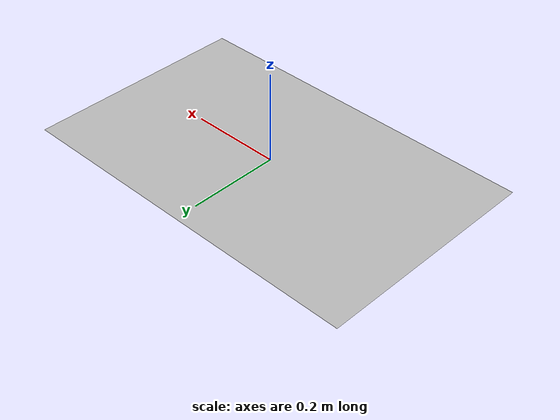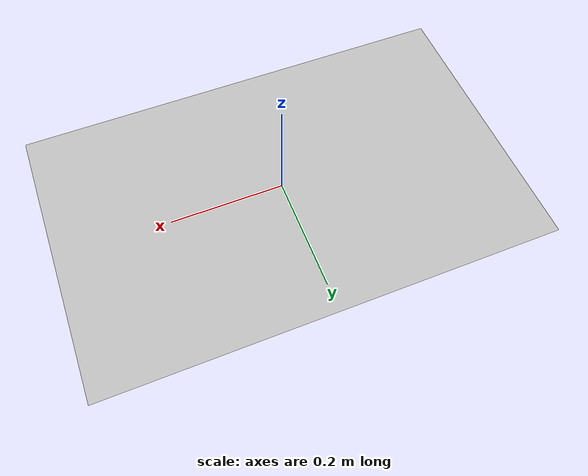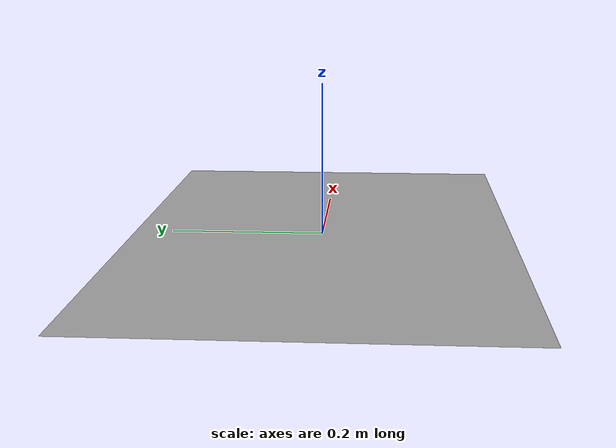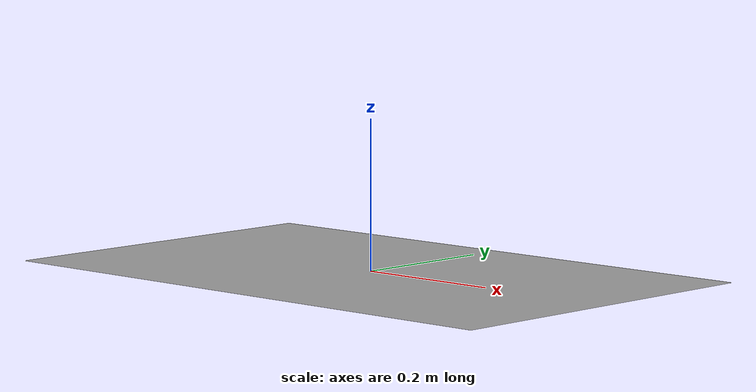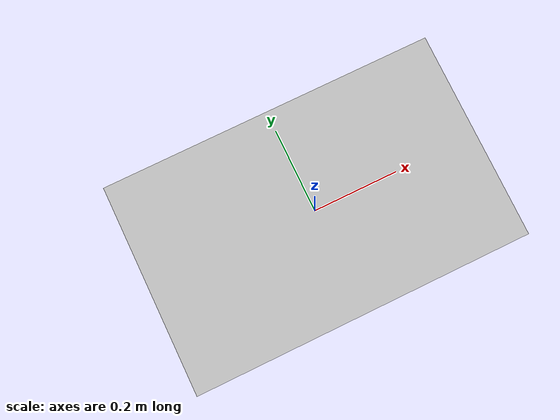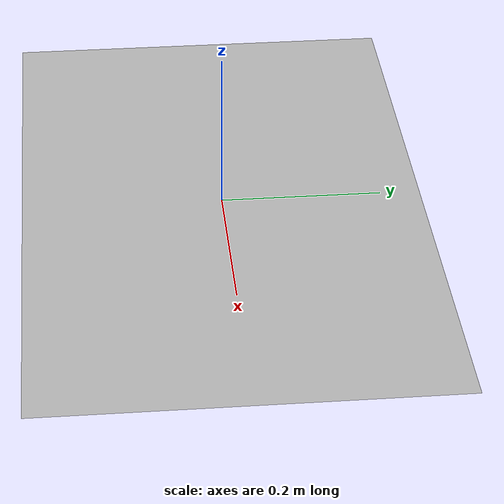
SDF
<?xml version='1.0'?>
<sdf version='1.7'>
  <model name='rei_guangzhou'>
    <link name='link_0'>
      <visual name='visual'>

        <geometry>
          <mesh>
            <uri>model://reinovo_robocom_oryxbot/rei_guangzhou/meshes/guangzhou.dae</uri>
          </mesh>
        </geometry>
      </visual>
    </link>
  </model>
</sdf>
